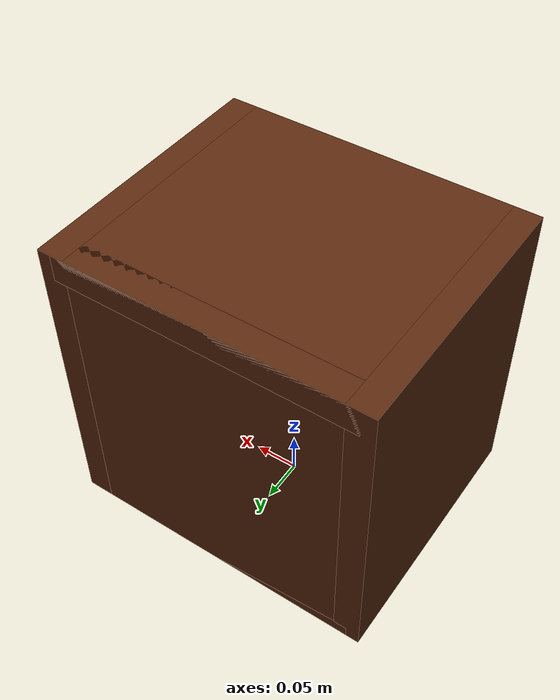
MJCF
<mujoco model="brown_cabinet">

    <asset>
        <material
            name="brown_wood"
            rgba="0.35 0.16 0.06 1"
            specular="0.2"
            shininess="0.3"/>
    </asset>

    <worldbody>
        <body>
            <body name="object">
                <!-- Back panel -->
                <geom
                    name="back"
                    type="box"
                    size="0.15 0.015 0.175"
                    pos="0 0.135 0.175"
                    material="brown_wood"
                    group="0"/>

                <!-- Left side -->
                <geom
                    name="left"
                    type="box"
                    size="0.015 0.15 0.175"
                    pos="-0.165 0 0.175"
                    material="brown_wood"
                    group="0"/>

                <!-- Right side -->
                <geom
                    name="right"
                    type="box"
                    size="0.015 0.15 0.175"
                    pos="0.165 0 0.175"
                    material="brown_wood"
                    group="0"/>

                <!-- Bottom -->
                <geom
                    name="bottom"
                    type="box"
                    size="0.165 0.15 0.015"
                    pos="0 0 0.015"
                    material="brown_wood"
                    group="0"/>

                <!-- Top -->
                <geom
                    name="top"
                    type="box"
                    size="0.165 0.15 0.015"
                    pos="0 0 0.335"
                    material="brown_wood"
                    group="0"/>

                <!-- Shelf 1 -->
                <geom
                    name="shelf_1"
                    type="box"
                    size="0.15 0.135 0.012"
                    pos="0 0 0.165"
                    material="brown_wood"
                    group="0"/>

                <!-- Shelf 2 -->

            </body>
        </body>
    </worldbody>

</mujoco>
